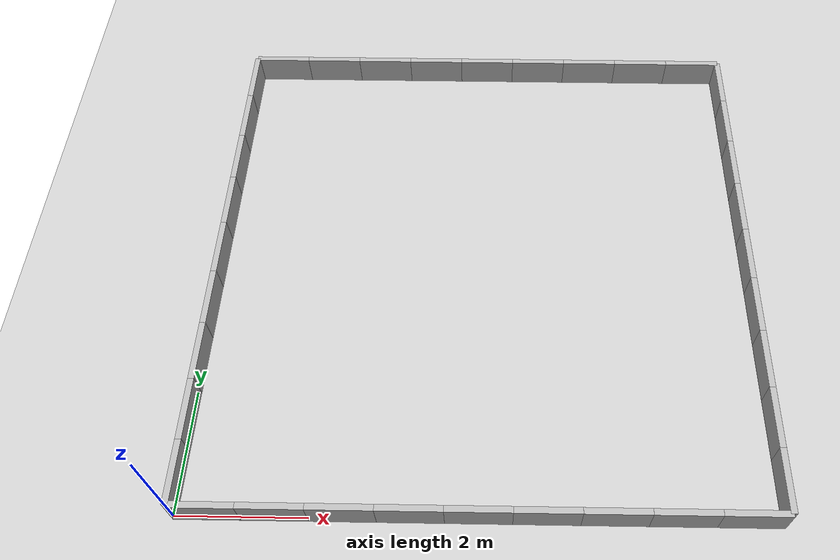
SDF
<?xml version="1.0" ?>
<sdf version="1.6">
  <world name="default">

    <!-- Aceleração da simulação em ~4x -->
    <gravity>0 0 -9.8</gravity>
    <magnetic_field>6e-06 2.3e-05 -4.2e-05</magnetic_field>
    <atmosphere type="adiabatic" />
    <physics name="my_physics" default="1" type="ode">
      <max_step_size>0.001</max_step_size>
      <real_time_update_rate>10000</real_time_update_rate>
      <real_time_factor>1.0</real_time_factor>
    </physics>

    <include>
      <uri>model://ground_plane</uri>
    </include>
    <include>
      <uri>model://sun</uri>
    </include>

    <model name="wall_0">
      <static>true</static>
      <pose>0.5 9.0 0 0 0 0.0</pose>
      <link name="link">
         <collision name="collision">
             <geometry>
                <box>
                  <size>1.0 0.1 1</size>
                </box>
             </geometry>
         </collision>
         <visual name="visual">
             <geometry>
                <box>
                  <size>1.0 0.1 1</size>
                </box>
             </geometry>
         </visual>
      </link>
    </model>

    <model name="wall_1">
      <static>true</static>
      <pose>1.5 9.0 0 0 0 0.0</pose>
      <link name="link">
         <collision name="collision">
             <geometry>
                <box>
                  <size>1.0 0.1 1</size>
                </box>
             </geometry>
         </collision>
         <visual name="visual">
             <geometry>
                <box>
                  <size>1.0 0.1 1</size>
                </box>
             </geometry>
         </visual>
      </link>
    </model>

    <model name="wall_2">
      <static>true</static>
      <pose>2.5 9.0 0 0 0 0.0</pose>
      <link name="link">
         <collision name="collision">
             <geometry>
                <box>
                  <size>1.0 0.1 1</size>
                </box>
             </geometry>
         </collision>
         <visual name="visual">
             <geometry>
                <box>
                  <size>1.0 0.1 1</size>
                </box>
             </geometry>
         </visual>
      </link>
    </model>

    <model name="wall_3">
      <static>true</static>
      <pose>3.5 9.0 0 0 0 0.0</pose>
      <link name="link">
         <collision name="collision">
             <geometry>
                <box>
                  <size>1.0 0.1 1</size>
                </box>
             </geometry>
         </collision>
         <visual name="visual">
             <geometry>
                <box>
                  <size>1.0 0.1 1</size>
                </box>
             </geometry>
         </visual>
      </link>
    </model>

    <model name="wall_4">
      <static>true</static>
      <pose>4.5 9.0 0 0 0 0.0</pose>
      <link name="link">
         <collision name="collision">
             <geometry>
                <box>
                  <size>1.0 0.1 1</size>
                </box>
             </geometry>
         </collision>
         <visual name="visual">
             <geometry>
                <box>
                  <size>1.0 0.1 1</size>
                </box>
             </geometry>
         </visual>
      </link>
    </model>

    <model name="wall_5">
      <static>true</static>
      <pose>5.5 9.0 0 0 0 0.0</pose>
      <link name="link">
         <collision name="collision">
             <geometry>
                <box>
                  <size>1.0 0.1 1</size>
                </box>
             </geometry>
         </collision>
         <visual name="visual">
             <geometry>
                <box>
                  <size>1.0 0.1 1</size>
                </box>
             </geometry>
         </visual>
      </link>
    </model>

    <model name="wall_6">
      <static>true</static>
      <pose>6.5 9.0 0 0 0 0.0</pose>
      <link name="link">
         <collision name="collision">
             <geometry>
                <box>
                  <size>1.0 0.1 1</size>
                </box>
             </geometry>
         </collision>
         <visual name="visual">
             <geometry>
                <box>
                  <size>1.0 0.1 1</size>
                </box>
             </geometry>
         </visual>
      </link>
    </model>

    <model name="wall_7">
      <static>true</static>
      <pose>7.5 9.0 0 0 0 0.0</pose>
      <link name="link">
         <collision name="collision">
             <geometry>
                <box>
                  <size>1.0 0.1 1</size>
                </box>
             </geometry>
         </collision>
         <visual name="visual">
             <geometry>
                <box>
                  <size>1.0 0.1 1</size>
                </box>
             </geometry>
         </visual>
      </link>
    </model>

    <model name="wall_8">
      <static>true</static>
      <pose>8.5 9.0 0 0 0 0.0</pose>
      <link name="link">
         <collision name="collision">
             <geometry>
                <box>
                  <size>1.0 0.1 1</size>
                </box>
             </geometry>
         </collision>
         <visual name="visual">
             <geometry>
                <box>
                  <size>1.0 0.1 1</size>
                </box>
             </geometry>
         </visual>
      </link>
    </model>

    <model name="wall_9">
      <static>true</static>
      <pose>9.0 8.5 0 0 0 -1.5707963267948966</pose>
      <link name="link">
         <collision name="collision">
             <geometry>
                <box>
                  <size>1.0 0.1 1</size>
                </box>
             </geometry>
         </collision>
         <visual name="visual">
             <geometry>
                <box>
                  <size>1.0 0.1 1</size>
                </box>
             </geometry>
         </visual>
      </link>
    </model>

    <model name="wall_10">
      <static>true</static>
      <pose>9.0 7.5 0 0 0 -1.5707963267948966</pose>
      <link name="link">
         <collision name="collision">
             <geometry>
                <box>
                  <size>1.0 0.1 1</size>
                </box>
             </geometry>
         </collision>
         <visual name="visual">
             <geometry>
                <box>
                  <size>1.0 0.1 1</size>
                </box>
             </geometry>
         </visual>
      </link>
    </model>

    <model name="wall_11">
      <static>true</static>
      <pose>9.0 6.5 0 0 0 -1.5707963267948966</pose>
      <link name="link">
         <collision name="collision">
             <geometry>
                <box>
                  <size>1.0 0.1 1</size>
                </box>
             </geometry>
         </collision>
         <visual name="visual">
             <geometry>
                <box>
                  <size>1.0 0.1 1</size>
                </box>
             </geometry>
         </visual>
      </link>
    </model>

    <model name="wall_12">
      <static>true</static>
      <pose>9.0 5.5 0 0 0 -1.5707963267948966</pose>
      <link name="link">
         <collision name="collision">
             <geometry>
                <box>
                  <size>1.0 0.1 1</size>
                </box>
             </geometry>
         </collision>
         <visual name="visual">
             <geometry>
                <box>
                  <size>1.0 0.1 1</size>
                </box>
             </geometry>
         </visual>
      </link>
    </model>

    <model name="wall_13">
      <static>true</static>
      <pose>9.0 4.5 0 0 0 -1.5707963267948966</pose>
      <link name="link">
         <collision name="collision">
             <geometry>
                <box>
                  <size>1.0 0.1 1</size>
                </box>
             </geometry>
         </collision>
         <visual name="visual">
             <geometry>
                <box>
                  <size>1.0 0.1 1</size>
                </box>
             </geometry>
         </visual>
      </link>
    </model>

    <model name="wall_14">
      <static>true</static>
      <pose>9.0 3.5 0 0 0 -1.5707963267948966</pose>
      <link name="link">
         <collision name="collision">
             <geometry>
                <box>
                  <size>1.0 0.1 1</size>
                </box>
             </geometry>
         </collision>
         <visual name="visual">
             <geometry>
                <box>
                  <size>1.0 0.1 1</size>
                </box>
             </geometry>
         </visual>
      </link>
    </model>

    <model name="wall_15">
      <static>true</static>
      <pose>9.0 2.5 0 0 0 -1.5707963267948966</pose>
      <link name="link">
         <collision name="collision">
             <geometry>
                <box>
                  <size>1.0 0.1 1</size>
                </box>
             </geometry>
         </collision>
         <visual name="visual">
             <geometry>
                <box>
                  <size>1.0 0.1 1</size>
                </box>
             </geometry>
         </visual>
      </link>
    </model>

    <model name="wall_16">
      <static>true</static>
      <pose>9.0 1.5 0 0 0 -1.5707963267948966</pose>
      <link name="link">
         <collision name="collision">
             <geometry>
                <box>
                  <size>1.0 0.1 1</size>
                </box>
             </geometry>
         </collision>
         <visual name="visual">
             <geometry>
                <box>
                  <size>1.0 0.1 1</size>
                </box>
             </geometry>
         </visual>
      </link>
    </model>

    <model name="wall_17">
      <static>true</static>
      <pose>9.0 0.5 0 0 0 -1.5707963267948966</pose>
      <link name="link">
         <collision name="collision">
             <geometry>
                <box>
                  <size>1.0 0.1 1</size>
                </box>
             </geometry>
         </collision>
         <visual name="visual">
             <geometry>
                <box>
                  <size>1.0 0.1 1</size>
                </box>
             </geometry>
         </visual>
      </link>
    </model>

    <model name="wall_18">
      <static>true</static>
      <pose>8.5 0.0 0 0 0 3.141592653589793</pose>
      <link name="link">
         <collision name="collision">
             <geometry>
                <box>
                  <size>1.0 0.1 1</size>
                </box>
             </geometry>
         </collision>
         <visual name="visual">
             <geometry>
                <box>
                  <size>1.0 0.1 1</size>
                </box>
             </geometry>
         </visual>
      </link>
    </model>

    <model name="wall_19">
      <static>true</static>
      <pose>7.5 0.0 0 0 0 3.141592653589793</pose>
      <link name="link">
         <collision name="collision">
             <geometry>
                <box>
                  <size>1.0 0.1 1</size>
                </box>
             </geometry>
         </collision>
         <visual name="visual">
             <geometry>
                <box>
                  <size>1.0 0.1 1</size>
                </box>
             </geometry>
         </visual>
      </link>
    </model>

    <model name="wall_20">
      <static>true</static>
      <pose>6.5 0.0 0 0 0 3.141592653589793</pose>
      <link name="link">
         <collision name="collision">
             <geometry>
                <box>
                  <size>1.0 0.1 1</size>
                </box>
             </geometry>
         </collision>
         <visual name="visual">
             <geometry>
                <box>
                  <size>1.0 0.1 1</size>
                </box>
             </geometry>
         </visual>
      </link>
    </model>

    <model name="wall_21">
      <static>true</static>
      <pose>5.5 0.0 0 0 0 3.141592653589793</pose>
      <link name="link">
         <collision name="collision">
             <geometry>
                <box>
                  <size>1.0 0.1 1</size>
                </box>
             </geometry>
         </collision>
         <visual name="visual">
             <geometry>
                <box>
                  <size>1.0 0.1 1</size>
                </box>
             </geometry>
         </visual>
      </link>
    </model>

    <model name="wall_22">
      <static>true</static>
      <pose>4.5 0.0 0 0 0 3.141592653589793</pose>
      <link name="link">
         <collision name="collision">
             <geometry>
                <box>
                  <size>1.0 0.1 1</size>
                </box>
             </geometry>
         </collision>
         <visual name="visual">
             <geometry>
                <box>
                  <size>1.0 0.1 1</size>
                </box>
             </geometry>
         </visual>
      </link>
    </model>

    <model name="wall_23">
      <static>true</static>
      <pose>3.5 0.0 0 0 0 3.141592653589793</pose>
      <link name="link">
         <collision name="collision">
             <geometry>
                <box>
                  <size>1.0 0.1 1</size>
                </box>
             </geometry>
         </collision>
         <visual name="visual">
             <geometry>
                <box>
                  <size>1.0 0.1 1</size>
                </box>
             </geometry>
         </visual>
      </link>
    </model>

    <model name="wall_24">
      <static>true</static>
      <pose>2.5 0.0 0 0 0 3.141592653589793</pose>
      <link name="link">
         <collision name="collision">
             <geometry>
                <box>
                  <size>1.0 0.1 1</size>
                </box>
             </geometry>
         </collision>
         <visual name="visual">
             <geometry>
                <box>
                  <size>1.0 0.1 1</size>
                </box>
             </geometry>
         </visual>
      </link>
    </model>

    <model name="wall_25">
      <static>true</static>
      <pose>1.5 0.0 0 0 0 3.141592653589793</pose>
      <link name="link">
         <collision name="collision">
             <geometry>
                <box>
                  <size>1.0 0.1 1</size>
                </box>
             </geometry>
         </collision>
         <visual name="visual">
             <geometry>
                <box>
                  <size>1.0 0.1 1</size>
                </box>
             </geometry>
         </visual>
      </link>
    </model>

    <model name="wall_26">
      <static>true</static>
      <pose>0.5 0.0 0 0 0 3.141592653589793</pose>
      <link name="link">
         <collision name="collision">
             <geometry>
                <box>
                  <size>1.0 0.1 1</size>
                </box>
             </geometry>
         </collision>
         <visual name="visual">
             <geometry>
                <box>
                  <size>1.0 0.1 1</size>
                </box>
             </geometry>
         </visual>
      </link>
    </model>

    <model name="wall_27">
      <static>true</static>
      <pose>0.0 0.5 0 0 0 1.5707963267948966</pose>
      <link name="link">
         <collision name="collision">
             <geometry>
                <box>
                  <size>1.0 0.1 1</size>
                </box>
             </geometry>
         </collision>
         <visual name="visual">
             <geometry>
                <box>
                  <size>1.0 0.1 1</size>
                </box>
             </geometry>
         </visual>
      </link>
    </model>

    <model name="wall_28">
      <static>true</static>
      <pose>0.0 1.5 0 0 0 1.5707963267948966</pose>
      <link name="link">
         <collision name="collision">
             <geometry>
                <box>
                  <size>1.0 0.1 1</size>
                </box>
             </geometry>
         </collision>
         <visual name="visual">
             <geometry>
                <box>
                  <size>1.0 0.1 1</size>
                </box>
             </geometry>
         </visual>
      </link>
    </model>

    <model name="wall_29">
      <static>true</static>
      <pose>0.0 2.5 0 0 0 1.5707963267948966</pose>
      <link name="link">
         <collision name="collision">
             <geometry>
                <box>
                  <size>1.0 0.1 1</size>
                </box>
             </geometry>
         </collision>
         <visual name="visual">
             <geometry>
                <box>
                  <size>1.0 0.1 1</size>
                </box>
             </geometry>
         </visual>
      </link>
    </model>

    <model name="wall_30">
      <static>true</static>
      <pose>0.0 3.5 0 0 0 1.5707963267948966</pose>
      <link name="link">
         <collision name="collision">
             <geometry>
                <box>
                  <size>1.0 0.1 1</size>
                </box>
             </geometry>
         </collision>
         <visual name="visual">
             <geometry>
                <box>
                  <size>1.0 0.1 1</size>
                </box>
             </geometry>
         </visual>
      </link>
    </model>

    <model name="wall_31">
      <static>true</static>
      <pose>0.0 4.5 0 0 0 1.5707963267948966</pose>
      <link name="link">
         <collision name="collision">
             <geometry>
                <box>
                  <size>1.0 0.1 1</size>
                </box>
             </geometry>
         </collision>
         <visual name="visual">
             <geometry>
                <box>
                  <size>1.0 0.1 1</size>
                </box>
             </geometry>
         </visual>
      </link>
    </model>

    <model name="wall_32">
      <static>true</static>
      <pose>0.0 5.5 0 0 0 1.5707963267948966</pose>
      <link name="link">
         <collision name="collision">
             <geometry>
                <box>
                  <size>1.0 0.1 1</size>
                </box>
             </geometry>
         </collision>
         <visual name="visual">
             <geometry>
                <box>
                  <size>1.0 0.1 1</size>
                </box>
             </geometry>
         </visual>
      </link>
    </model>

    <model name="wall_33">
      <static>true</static>
      <pose>0.0 6.5 0 0 0 1.5707963267948966</pose>
      <link name="link">
         <collision name="collision">
             <geometry>
                <box>
                  <size>1.0 0.1 1</size>
                </box>
             </geometry>
         </collision>
         <visual name="visual">
             <geometry>
                <box>
                  <size>1.0 0.1 1</size>
                </box>
             </geometry>
         </visual>
      </link>
    </model>

    <model name="wall_34">
      <static>true</static>
      <pose>0.0 7.5 0 0 0 1.5707963267948966</pose>
      <link name="link">
         <collision name="collision">
             <geometry>
                <box>
                  <size>1.0 0.1 1</size>
                </box>
             </geometry>
         </collision>
         <visual name="visual">
             <geometry>
                <box>
                  <size>1.0 0.1 1</size>
                </box>
             </geometry>
         </visual>
      </link>
    </model>

    <model name="wall_35">
      <static>true</static>
      <pose>0.0 8.5 0 0 0 1.5707963267948966</pose>
      <link name="link">
         <collision name="collision">
             <geometry>
                <box>
                  <size>1.0 0.1 1</size>
                </box>
             </geometry>
         </collision>
         <visual name="visual">
             <geometry>
                <box>
                  <size>1.0 0.1 1</size>
                </box>
             </geometry>
         </visual>
      </link>
    </model>

    <model name="wall_36">
      <static>true</static>
      <pose>0.0 9.0 0 0 0 0.0</pose>
      <link name="link">
         <collision name="collision">
             <geometry>
                <box>
                  <size>0.0 0.1 1</size>
                </box>
             </geometry>
         </collision>
         <visual name="visual">
             <geometry>
                <box>
                  <size>0.0 0.1 1</size>
                </box>
             </geometry>
         </visual>
      </link>
    </model>
  </world>
</sdf>
